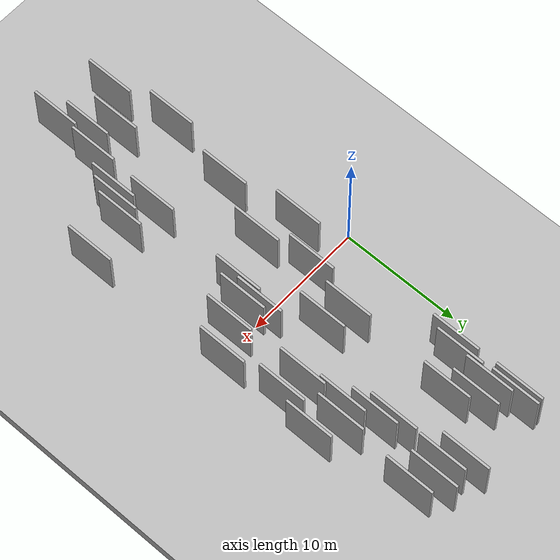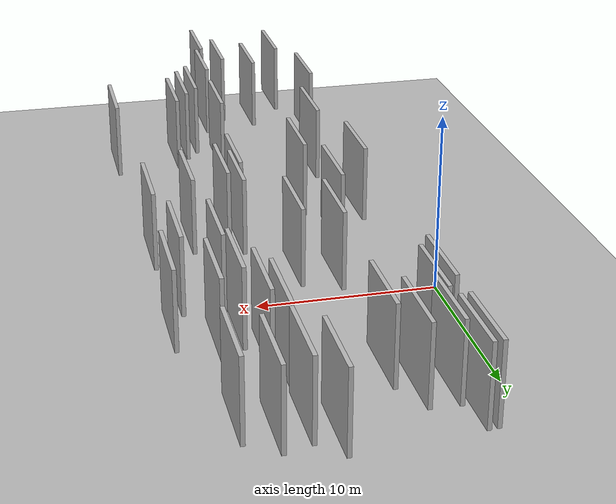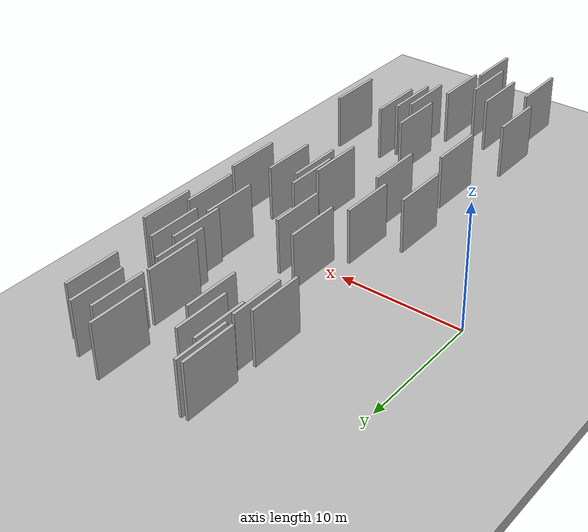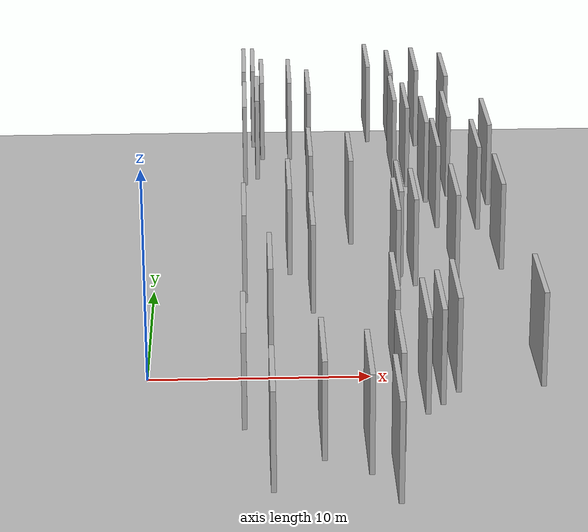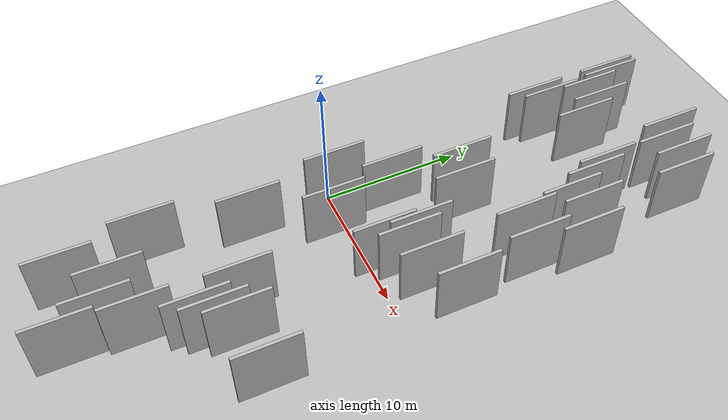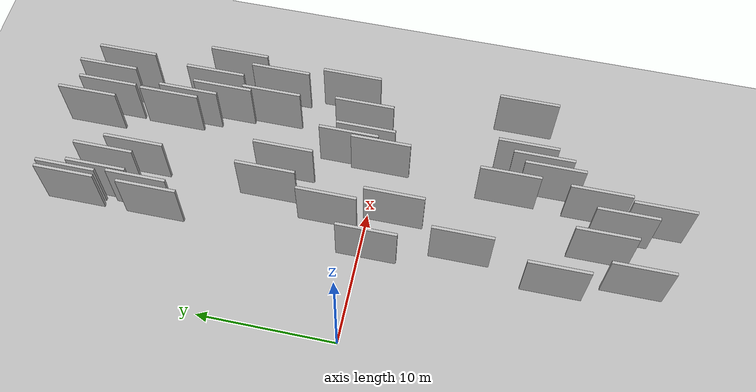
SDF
<?xml version="1.0" encoding="utf-8"?>

<sdf version="1.6">

   <world name="default">

      <gui fullscreen="0">

         <camera name="user_camera">

            <pose>-15 0 4.57585 0 0 0</pose>

            <view_controller>orbit</view_controller>

         </camera>

      </gui>

      <scene>

         <sky>

           <clouds>

             <speed>12</speed>

           </clouds>

         </sky>

         <ambient>0.4 0.4 0.4 1</ambient>

         <background>0.7 0.7 0.7 1</background>

         <shadows>1</shadows>

      </scene>

      <gravity>0 0 -9.8066</gravity>

      <magnetic_field>6e-06 2.3e-05 -4.2e-05</magnetic_field>

      <physics default="0" name="default_physics" type="ode">

         <ode>

            <solver>

               <type>quick</type>

               <iters>10</iters>

               <sor>1.0</sor>

               <use_dynamic_moi_rescaling>0</use_dynamic_moi_rescaling>

            </solver>

            <constraints>

               <cfm>0</cfm>

               <erp>0.2</erp>

               <contact_max_correcting_vel>100</contact_max_correcting_vel>

               <contact_surface_layer>0.001</contact_surface_layer>

            </constraints>

         </ode>

         <max_step_size>0.004</max_step_size>

         <real_time_factor>1</real_time_factor>

         <real_time_update_rate>250</real_time_update_rate>

      </physics>

      <light name="sun" type="directional">

         <cast_shadows>1</cast_shadows>

         <pose>0 0 10 0 0 0</pose>

         <diffuse>0.8 0.8 0.8 1</diffuse>

         <specular>0.2 0.2 0.2 1</specular>

         <attenuation>

            <range>1000</range>

            <constant>0.9</constant>

            <linear>0.01</linear>

            <quadratic>0.001</quadratic>

         </attenuation>

         <direction>-0.5 0.1 -0.9</direction>

      </light>

      <include>

         <name>ground_plane_1</name>

         <uri>model://HANNAS_ground_plane</uri>

         <pose>0 0 0  0 0 0</pose>

      </include>

      <include>

         <name>ground_plane_2</name>

         <uri>model://HANNAS_ground_plane</uri>

         <pose>100 0 0  0 0 0</pose>

      </include>

      <model name="HANNAS_wall_1">

         <static>1</static>

         <pose frame="">10.2005 -15.1687 5.0 0.000000 0.000000 1.570796</pose>

         <link name="link">

            <pose frame="">0 0 2.00 0 0 0</pose>

            <collision name="collision">

               <geometry>

                  <box>

                     <size>4.00 0.2 4.00</size>

                  </box>

               </geometry>

               <max_contacts>10</max_contacts>

               <surface>

                  <contact>

                     <ode/>

                  </contact>

                  <bounce/>

                  <friction>

                     <torsional>

                        <ode/>

                     </torsional>

                     <ode/>

                  </friction>

               </surface>

            </collision>

            <visual name="visual">

               <cast_shadows>0</cast_shadows>

               <geometry>

                  <box>

                     <size>4.00 0.2 4.00</size>

                  </box>

               </geometry>

               <material>

                  <script>

                     <uri>model://HANNAS_wall/materials/scripts</uri>

                     <uri>model://HANNAS_wall/materials/textures</uri>

                     <name>vrc/HANNAS_wall</name>

                  </script>

               </material>

            </visual>

            <self_collide>0</self_collide>

            <enable_wind>0</enable_wind>

            <kinematic>0</kinematic>

         </link>

      </model>

      <model name="HANNAS_wall_2">

         <static>1</static>

         <pose frame="">6.7532 16.9944 5.0 0.000000 0.000000 1.570796</pose>

         <link name="link">

            <pose frame="">0 0 2.00 0 0 0</pose>

            <collision name="collision">

               <geometry>

                  <box>

                     <size>4.00 0.2 4.00</size>

                  </box>

               </geometry>

               <max_contacts>10</max_contacts>

               <surface>

                  <contact>

                     <ode/>

                  </contact>

                  <bounce/>

                  <friction>

                     <torsional>

                        <ode/>

                     </torsional>

                     <ode/>

                  </friction>

               </surface>

            </collision>

            <visual name="visual">

               <cast_shadows>0</cast_shadows>

               <geometry>

                  <box>

                     <size>4.00 0.2 4.00</size>

                  </box>

               </geometry>

               <material>

                  <script>

                     <uri>model://HANNAS_wall/materials/scripts</uri>

                     <uri>model://HANNAS_wall/materials/textures</uri>

                     <name>vrc/HANNAS_wall</name>

                  </script>

               </material>

            </visual>

            <self_collide>0</self_collide>

            <enable_wind>0</enable_wind>

            <kinematic>0</kinematic>

         </link>

      </model>

      <model name="HANNAS_wall_3">

         <static>1</static>

         <pose frame="">11.2516 1.5689 5.0 0.000000 0.000000 1.570796</pose>

         <link name="link">

            <pose frame="">0 0 2.00 0 0 0</pose>

            <collision name="collision">

               <geometry>

                  <box>

                     <size>4.00 0.2 4.00</size>

                  </box>

               </geometry>

               <max_contacts>10</max_contacts>

               <surface>

                  <contact>

                     <ode/>

                  </contact>

                  <bounce/>

                  <friction>

                     <torsional>

                        <ode/>

                     </torsional>

                     <ode/>

                  </friction>

               </surface>

            </collision>

            <visual name="visual">

               <cast_shadows>0</cast_shadows>

               <geometry>

                  <box>

                     <size>4.00 0.2 4.00</size>

                  </box>

               </geometry>

               <material>

                  <script>

                     <uri>model://HANNAS_wall/materials/scripts</uri>

                     <uri>model://HANNAS_wall/materials/textures</uri>

                     <name>vrc/HANNAS_wall</name>

                  </script>

               </material>

            </visual>

            <self_collide>0</self_collide>

            <enable_wind>0</enable_wind>

            <kinematic>0</kinematic>

         </link>

      </model>

      <model name="HANNAS_wall_4">

         <static>1</static>

         <pose frame="">16.1217 -9.7748 5.0 0.000000 0.000000 1.570796</pose>

         <link name="link">

            <pose frame="">0 0 2.00 0 0 0</pose>

            <collision name="collision">

               <geometry>

                  <box>

                     <size>4.00 0.2 4.00</size>

                  </box>

               </geometry>

               <max_contacts>10</max_contacts>

               <surface>

                  <contact>

                     <ode/>

                  </contact>

                  <bounce/>

                  <friction>

                     <torsional>

                        <ode/>

                     </torsional>

                     <ode/>

                  </friction>

               </surface>

            </collision>

            <visual name="visual">

               <cast_shadows>0</cast_shadows>

               <geometry>

                  <box>

                     <size>4.00 0.2 4.00</size>

                  </box>

               </geometry>

               <material>

                  <script>

                     <uri>model://HANNAS_wall/materials/scripts</uri>

                     <uri>model://HANNAS_wall/materials/textures</uri>

                     <name>vrc/HANNAS_wall</name>

                  </script>

               </material>

            </visual>

            <self_collide>0</self_collide>

            <enable_wind>0</enable_wind>

            <kinematic>0</kinematic>

         </link>

      </model>

      <model name="HANNAS_wall_5">

         <static>1</static>

         <pose frame="">15.7666 2.2846 5.0 0.000000 0.000000 1.570796</pose>

         <link name="link">

            <pose frame="">0 0 2.00 0 0 0</pose>

            <collision name="collision">

               <geometry>

                  <box>

                     <size>4.00 0.2 4.00</size>

                  </box>

               </geometry>

               <max_contacts>10</max_contacts>

               <surface>

                  <contact>

                     <ode/>

                  </contact>

                  <bounce/>

                  <friction>

                     <torsional>

                        <ode/>

                     </torsional>

                     <ode/>

                  </friction>

               </surface>

            </collision>

            <visual name="visual">

               <cast_shadows>0</cast_shadows>

               <geometry>

                  <box>

                     <size>4.00 0.2 4.00</size>

                  </box>

               </geometry>

               <material>

                  <script>

                     <uri>model://HANNAS_wall/materials/scripts</uri>

                     <uri>model://HANNAS_wall/materials/textures</uri>

                     <name>vrc/HANNAS_wall</name>

                  </script>

               </material>

            </visual>

            <self_collide>0</self_collide>

            <enable_wind>0</enable_wind>

            <kinematic>0</kinematic>

         </link>

      </model>

      <model name="HANNAS_wall_6">

         <static>1</static>

         <pose frame="">13.3416 7.3728 5.0 0.000000 0.000000 1.570796</pose>

         <link name="link">

            <pose frame="">0 0 2.00 0 0 0</pose>

            <collision name="collision">

               <geometry>

                  <box>

                     <size>4.00 0.2 4.00</size>

                  </box>

               </geometry>

               <max_contacts>10</max_contacts>

               <surface>

                  <contact>

                     <ode/>

                  </contact>

                  <bounce/>

                  <friction>

                     <torsional>

                        <ode/>

                     </torsional>

                     <ode/>

                  </friction>

               </surface>

            </collision>

            <visual name="visual">

               <cast_shadows>0</cast_shadows>

               <geometry>

                  <box>

                     <size>4.00 0.2 4.00</size>

                  </box>

               </geometry>

               <material>

                  <script>

                     <uri>model://HANNAS_wall/materials/scripts</uri>

                     <uri>model://HANNAS_wall/materials/textures</uri>

                     <name>vrc/HANNAS_wall</name>

                  </script>

               </material>

            </visual>

            <self_collide>0</self_collide>

            <enable_wind>0</enable_wind>

            <kinematic>0</kinematic>

         </link>

      </model>

      <model name="HANNAS_wall_7">

         <static>1</static>

         <pose frame="">4.9559 18.9395 5.0 0.000000 0.000000 1.570796</pose>

         <link name="link">

            <pose frame="">0 0 2.00 0 0 0</pose>

            <collision name="collision">

               <geometry>

                  <box>

                     <size>4.00 0.2 4.00</size>

                  </box>

               </geometry>

               <max_contacts>10</max_contacts>

               <surface>

                  <contact>

                     <ode/>

                  </contact>

                  <bounce/>

                  <friction>

                     <torsional>

                        <ode/>

                     </torsional>

                     <ode/>

                  </friction>

               </surface>

            </collision>

            <visual name="visual">

               <cast_shadows>0</cast_shadows>

               <geometry>

                  <box>

                     <size>4.00 0.2 4.00</size>

                  </box>

               </geometry>

               <material>

                  <script>

                     <uri>model://HANNAS_wall/materials/scripts</uri>

                     <uri>model://HANNAS_wall/materials/textures</uri>

                     <name>vrc/HANNAS_wall</name>

                  </script>

               </material>

            </visual>

            <self_collide>0</self_collide>

            <enable_wind>0</enable_wind>

            <kinematic>0</kinematic>

         </link>

      </model>

      <model name="HANNAS_wall_8">

         <static>1</static>

         <pose frame="">8.9436 -16.9515 5.0 0.000000 0.000000 1.570796</pose>

         <link name="link">

            <pose frame="">0 0 2.00 0 0 0</pose>

            <collision name="collision">

               <geometry>

                  <box>

                     <size>4.00 0.2 4.00</size>

                  </box>

               </geometry>

               <max_contacts>10</max_contacts>

               <surface>

                  <contact>

                     <ode/>

                  </contact>

                  <bounce/>

                  <friction>

                     <torsional>

                        <ode/>

                     </torsional>

                     <ode/>

                  </friction>

               </surface>

            </collision>

            <visual name="visual">

               <cast_shadows>0</cast_shadows>

               <geometry>

                  <box>

                     <size>4.00 0.2 4.00</size>

                  </box>

               </geometry>

               <material>

                  <script>

                     <uri>model://HANNAS_wall/materials/scripts</uri>

                     <uri>model://HANNAS_wall/materials/textures</uri>

                     <name>vrc/HANNAS_wall</name>

                  </script>

               </material>

            </visual>

            <self_collide>0</self_collide>

            <enable_wind>0</enable_wind>

            <kinematic>0</kinematic>

         </link>

      </model>

      <model name="HANNAS_wall_9">

         <static>1</static>

         <pose frame="">4.5110 18.8897 5.0 0.000000 0.000000 1.570796</pose>

         <link name="link">

            <pose frame="">0 0 2.00 0 0 0</pose>

            <collision name="collision">

               <geometry>

                  <box>

                     <size>4.00 0.2 4.00</size>

                  </box>

               </geometry>

               <max_contacts>10</max_contacts>

               <surface>

                  <contact>

                     <ode/>

                  </contact>

                  <bounce/>

                  <friction>

                     <torsional>

                        <ode/>

                     </torsional>

                     <ode/>

                  </friction>

               </surface>

            </collision>

            <visual name="visual">

               <cast_shadows>0</cast_shadows>

               <geometry>

                  <box>

                     <size>4.00 0.2 4.00</size>

                  </box>

               </geometry>

               <material>

                  <script>

                     <uri>model://HANNAS_wall/materials/scripts</uri>

                     <uri>model://HANNAS_wall/materials/textures</uri>

                     <name>vrc/HANNAS_wall</name>

                  </script>

               </material>

            </visual>

            <self_collide>0</self_collide>

            <enable_wind>0</enable_wind>

            <kinematic>0</kinematic>

         </link>

      </model>

      <model name="HANNAS_wall_10">

         <static>1</static>

         <pose frame="">10.9849 -0.6470 5.0 0.000000 0.000000 1.570796</pose>

         <link name="link">

            <pose frame="">0 0 2.00 0 0 0</pose>

            <collision name="collision">

               <geometry>

                  <box>

                     <size>4.00 0.2 4.00</size>

                  </box>

               </geometry>

               <max_contacts>10</max_contacts>

               <surface>

                  <contact>

                     <ode/>

                  </contact>

                  <bounce/>

                  <friction>

                     <torsional>

                        <ode/>

                     </torsional>

                     <ode/>

                  </friction>

               </surface>

            </collision>

            <visual name="visual">

               <cast_shadows>0</cast_shadows>

               <geometry>

                  <box>

                     <size>4.00 0.2 4.00</size>

                  </box>

               </geometry>

               <material>

                  <script>

                     <uri>model://HANNAS_wall/materials/scripts</uri>

                     <uri>model://HANNAS_wall/materials/textures</uri>

                     <name>vrc/HANNAS_wall</name>

                  </script>

               </material>

            </visual>

            <self_collide>0</self_collide>

            <enable_wind>0</enable_wind>

            <kinematic>0</kinematic>

         </link>

      </model>

      <model name="HANNAS_wall_11">

         <static>1</static>

         <pose frame="">12.0299 -11.2718 5.0 0.000000 0.000000 1.570796</pose>

         <link name="link">

            <pose frame="">0 0 2.00 0 0 0</pose>

            <collision name="collision">

               <geometry>

                  <box>

                     <size>4.00 0.2 4.00</size>

                  </box>

               </geometry>

               <max_contacts>10</max_contacts>

               <surface>

                  <contact>

                     <ode/>

                  </contact>

                  <bounce/>

                  <friction>

                     <torsional>

                        <ode/>

                     </torsional>

                     <ode/>

                  </friction>

               </surface>

            </collision>

            <visual name="visual">

               <cast_shadows>0</cast_shadows>

               <geometry>

                  <box>

                     <size>4.00 0.2 4.00</size>

                  </box>

               </geometry>

               <material>

                  <script>

                     <uri>model://HANNAS_wall/materials/scripts</uri>

                     <uri>model://HANNAS_wall/materials/textures</uri>

                     <name>vrc/HANNAS_wall</name>

                  </script>

               </material>

            </visual>

            <self_collide>0</self_collide>

            <enable_wind>0</enable_wind>

            <kinematic>0</kinematic>

         </link>

      </model>

      <model name="HANNAS_wall_12">

         <static>1</static>

         <pose frame="">12.7286 -10.1697 5.0 0.000000 0.000000 1.570796</pose>

         <link name="link">

            <pose frame="">0 0 2.00 0 0 0</pose>

            <collision name="collision">

               <geometry>

                  <box>

                     <size>4.00 0.2 4.00</size>

                  </box>

               </geometry>

               <max_contacts>10</max_contacts>

               <surface>

                  <contact>

                     <ode/>

                  </contact>

                  <bounce/>

                  <friction>

                     <torsional>

                        <ode/>

                     </torsional>

                     <ode/>

                  </friction>

               </surface>

            </collision>

            <visual name="visual">

               <cast_shadows>0</cast_shadows>

               <geometry>

                  <box>

                     <size>4.00 0.2 4.00</size>

                  </box>

               </geometry>

               <material>

                  <script>

                     <uri>model://HANNAS_wall/materials/scripts</uri>

                     <uri>model://HANNAS_wall/materials/textures</uri>

                     <name>vrc/HANNAS_wall</name>

                  </script>

               </material>

            </visual>

            <self_collide>0</self_collide>

            <enable_wind>0</enable_wind>

            <kinematic>0</kinematic>

         </link>

      </model>

      <model name="HANNAS_wall_13">

         <static>1</static>

         <pose frame="">11.8707 18.4055 5.0 0.000000 0.000000 1.570796</pose>

         <link name="link">

            <pose frame="">0 0 2.00 0 0 0</pose>

            <collision name="collision">

               <geometry>

                  <box>

                     <size>4.00 0.2 4.00</size>

                  </box>

               </geometry>

               <max_contacts>10</max_contacts>

               <surface>

                  <contact>

                     <ode/>

                  </contact>

                  <bounce/>

                  <friction>

                     <torsional>

                        <ode/>

                     </torsional>

                     <ode/>

                  </friction>

               </surface>

            </collision>

            <visual name="visual">

               <cast_shadows>0</cast_shadows>

               <geometry>

                  <box>

                     <size>4.00 0.2 4.00</size>

                  </box>

               </geometry>

               <material>

                  <script>

                     <uri>model://HANNAS_wall/materials/scripts</uri>

                     <uri>model://HANNAS_wall/materials/textures</uri>

                     <name>vrc/HANNAS_wall</name>

                  </script>

               </material>

            </visual>

            <self_collide>0</self_collide>

            <enable_wind>0</enable_wind>

            <kinematic>0</kinematic>

         </link>

      </model>

      <model name="HANNAS_wall_14">

         <static>1</static>

         <pose frame="">13.1699 18.7863 5.0 0.000000 0.000000 1.570796</pose>

         <link name="link">

            <pose frame="">0 0 2.00 0 0 0</pose>

            <collision name="collision">

               <geometry>

                  <box>

                     <size>4.00 0.2 4.00</size>

                  </box>

               </geometry>

               <max_contacts>10</max_contacts>

               <surface>

                  <contact>

                     <ode/>

                  </contact>

                  <bounce/>

                  <friction>

                     <torsional>

                        <ode/>

                     </torsional>

                     <ode/>

                  </friction>

               </surface>

            </collision>

            <visual name="visual">

               <cast_shadows>0</cast_shadows>

               <geometry>

                  <box>

                     <size>4.00 0.2 4.00</size>

                  </box>

               </geometry>

               <material>

                  <script>

                     <uri>model://HANNAS_wall/materials/scripts</uri>

                     <uri>model://HANNAS_wall/materials/textures</uri>

                     <name>vrc/HANNAS_wall</name>

                  </script>

               </material>

            </visual>

            <self_collide>0</self_collide>

            <enable_wind>0</enable_wind>

            <kinematic>0</kinematic>

         </link>

      </model>

      <model name="HANNAS_wall_15">

         <static>1</static>

         <pose frame="">13.6700 1.0038 5.0 0.000000 0.000000 1.570796</pose>

         <link name="link">

            <pose frame="">0 0 2.00 0 0 0</pose>

            <collision name="collision">

               <geometry>

                  <box>

                     <size>4.00 0.2 4.00</size>

                  </box>

               </geometry>

               <max_contacts>10</max_contacts>

               <surface>

                  <contact>

                     <ode/>

                  </contact>

                  <bounce/>

                  <friction>

                     <torsional>

                        <ode/>

                     </torsional>

                     <ode/>

                  </friction>

               </surface>

            </collision>

            <visual name="visual">

               <cast_shadows>0</cast_shadows>

               <geometry>

                  <box>

                     <size>4.00 0.2 4.00</size>

                  </box>

               </geometry>

               <material>

                  <script>

                     <uri>model://HANNAS_wall/materials/scripts</uri>

                     <uri>model://HANNAS_wall/materials/textures</uri>

                     <name>vrc/HANNAS_wall</name>

                  </script>

               </material>

            </visual>

            <self_collide>0</self_collide>

            <enable_wind>0</enable_wind>

            <kinematic>0</kinematic>

         </link>

      </model>

      <model name="HANNAS_wall_16">

         <static>1</static>

         <pose frame="">9.2551 5.5345 5.0 0.000000 0.000000 1.570796</pose>

         <link name="link">

            <pose frame="">0 0 2.00 0 0 0</pose>

            <collision name="collision">

               <geometry>

                  <box>

                     <size>4.00 0.2 4.00</size>

                  </box>

               </geometry>

               <max_contacts>10</max_contacts>

               <surface>

                  <contact>

                     <ode/>

                  </contact>

                  <bounce/>

                  <friction>

                     <torsional>

                        <ode/>

                     </torsional>

                     <ode/>

                  </friction>

               </surface>

            </collision>

            <visual name="visual">

               <cast_shadows>0</cast_shadows>

               <geometry>

                  <box>

                     <size>4.00 0.2 4.00</size>

                  </box>

               </geometry>

               <material>

                  <script>

                     <uri>model://HANNAS_wall/materials/scripts</uri>

                     <uri>model://HANNAS_wall/materials/textures</uri>

                     <name>vrc/HANNAS_wall</name>

                  </script>

               </material>

            </visual>

            <self_collide>0</self_collide>

            <enable_wind>0</enable_wind>

            <kinematic>0</kinematic>

         </link>

      </model>

      <model name="HANNAS_wall_17">

         <static>1</static>

         <pose frame="">7.2999 -2.2638 5.0 0.000000 0.000000 1.570796</pose>

         <link name="link">

            <pose frame="">0 0 2.00 0 0 0</pose>

            <collision name="collision">

               <geometry>

                  <box>

                     <size>4.00 0.2 4.00</size>

                  </box>

               </geometry>

               <max_contacts>10</max_contacts>

               <surface>

                  <contact>

                     <ode/>

                  </contact>

                  <bounce/>

                  <friction>

                     <torsional>

                        <ode/>

                     </torsional>

                     <ode/>

                  </friction>

               </surface>

            </collision>

            <visual name="visual">

               <cast_shadows>0</cast_shadows>

               <geometry>

                  <box>

                     <size>4.00 0.2 4.00</size>

                  </box>

               </geometry>

               <material>

                  <script>

                     <uri>model://HANNAS_wall/materials/scripts</uri>

                     <uri>model://HANNAS_wall/materials/textures</uri>

                     <name>vrc/HANNAS_wall</name>

                  </script>

               </material>

            </visual>

            <self_collide>0</self_collide>

            <enable_wind>0</enable_wind>

            <kinematic>0</kinematic>

         </link>

      </model>

      <model name="HANNAS_wall_18">

         <static>1</static>

         <pose frame="">12.3138 12.8911 5.0 0.000000 0.000000 1.570796</pose>

         <link name="link">

            <pose frame="">0 0 2.00 0 0 0</pose>

            <collision name="collision">

               <geometry>

                  <box>

                     <size>4.00 0.2 4.00</size>

                  </box>

               </geometry>

               <max_contacts>10</max_contacts>

               <surface>

                  <contact>

                     <ode/>

                  </contact>

                  <bounce/>

                  <friction>

                     <torsional>

                        <ode/>

                     </torsional>

                     <ode/>

                  </friction>

               </surface>

            </collision>

            <visual name="visual">

               <cast_shadows>0</cast_shadows>

               <geometry>

                  <box>

                     <size>4.00 0.2 4.00</size>

                  </box>

               </geometry>

               <material>

                  <script>

                     <uri>model://HANNAS_wall/materials/scripts</uri>

                     <uri>model://HANNAS_wall/materials/textures</uri>

                     <name>vrc/HANNAS_wall</name>

                  </script>

               </material>

            </visual>

            <self_collide>0</self_collide>

            <enable_wind>0</enable_wind>

            <kinematic>0</kinematic>

         </link>

      </model>

      <model name="HANNAS_wall_19">

         <static>1</static>

         <pose frame="">7.4663 6.2818 5.0 0.000000 0.000000 1.570796</pose>

         <link name="link">

            <pose frame="">0 0 2.00 0 0 0</pose>

            <collision name="collision">

               <geometry>

                  <box>

                     <size>4.00 0.2 4.00</size>

                  </box>

               </geometry>

               <max_contacts>10</max_contacts>

               <surface>

                  <contact>

                     <ode/>

                  </contact>

                  <bounce/>

                  <friction>

                     <torsional>

                        <ode/>

                     </torsional>

                     <ode/>

                  </friction>

               </surface>

            </collision>

            <visual name="visual">

               <cast_shadows>0</cast_shadows>

               <geometry>

                  <box>

                     <size>4.00 0.2 4.00</size>

                  </box>

               </geometry>

               <material>

                  <script>

                     <uri>model://HANNAS_wall/materials/scripts</uri>

                     <uri>model://HANNAS_wall/materials/textures</uri>

                     <name>vrc/HANNAS_wall</name>

                  </script>

               </material>

            </visual>

            <self_collide>0</self_collide>

            <enable_wind>0</enable_wind>

            <kinematic>0</kinematic>

         </link>

      </model>

      <model name="HANNAS_wall_20">

         <static>1</static>

         <pose frame="">7.2711 -15.7959 5.0 0.000000 0.000000 1.570796</pose>

         <link name="link">

            <pose frame="">0 0 2.00 0 0 0</pose>

            <collision name="collision">

               <geometry>

                  <box>

                     <size>4.00 0.2 4.00</size>

                  </box>

               </geometry>

               <max_contacts>10</max_contacts>

               <surface>

                  <contact>

                     <ode/>

                  </contact>

                  <bounce/>

                  <friction>

                     <torsional>

                        <ode/>

                     </torsional>

                     <ode/>

                  </friction>

               </surface>

            </collision>

            <visual name="visual">

               <cast_shadows>0</cast_shadows>

               <geometry>

                  <box>

                     <size>4.00 0.2 4.00</size>

                  </box>

               </geometry>

               <material>

                  <script>

                     <uri>model://HANNAS_wall/materials/scripts</uri>

                     <uri>model://HANNAS_wall/materials/textures</uri>

                     <name>vrc/HANNAS_wall</name>

                  </script>

               </material>

            </visual>

            <self_collide>0</self_collide>

            <enable_wind>0</enable_wind>

            <kinematic>0</kinematic>

         </link>

      </model>

      <model name="HANNAS_wall_21">

         <static>1</static>

         <pose frame="">15.1887 7.1580 5.0 0.000000 0.000000 1.570796</pose>

         <link name="link">

            <pose frame="">0 0 2.00 0 0 0</pose>

            <collision name="collision">

               <geometry>

                  <box>

                     <size>4.00 0.2 4.00</size>

                  </box>

               </geometry>

               <max_contacts>10</max_contacts>

               <surface>

                  <contact>

                     <ode/>

                  </contact>

                  <bounce/>

                  <friction>

                     <torsional>

                        <ode/>

                     </torsional>

                     <ode/>

                  </friction>

               </surface>

            </collision>

            <visual name="visual">

               <cast_shadows>0</cast_shadows>

               <geometry>

                  <box>

                     <size>4.00 0.2 4.00</size>

                  </box>

               </geometry>

               <material>

                  <script>

                     <uri>model://HANNAS_wall/materials/scripts</uri>

                     <uri>model://HANNAS_wall/materials/textures</uri>

                     <name>vrc/HANNAS_wall</name>

                  </script>

               </material>

            </visual>

            <self_collide>0</self_collide>

            <enable_wind>0</enable_wind>

            <kinematic>0</kinematic>

         </link>

      </model>

      <model name="HANNAS_wall_22">

         <static>1</static>

         <pose frame="">14.5763 17.8428 5.0 0.000000 0.000000 1.570796</pose>

         <link name="link">

            <pose frame="">0 0 2.00 0 0 0</pose>

            <collision name="collision">

               <geometry>

                  <box>

                     <size>4.00 0.2 4.00</size>

                  </box>

               </geometry>

               <max_contacts>10</max_contacts>

               <surface>

                  <contact>

                     <ode/>

                  </contact>

                  <bounce/>

                  <friction>

                     <torsional>

                        <ode/>

                     </torsional>

                     <ode/>

                  </friction>

               </surface>

            </collision>

            <visual name="visual">

               <cast_shadows>0</cast_shadows>

               <geometry>

                  <box>

                     <size>4.00 0.2 4.00</size>

                  </box>

               </geometry>

               <material>

                  <script>

                     <uri>model://HANNAS_wall/materials/scripts</uri>

                     <uri>model://HANNAS_wall/materials/textures</uri>

                     <name>vrc/HANNAS_wall</name>

                  </script>

               </material>

            </visual>

            <self_collide>0</self_collide>

            <enable_wind>0</enable_wind>

            <kinematic>0</kinematic>

         </link>

      </model>

      <model name="HANNAS_wall_23">

         <static>1</static>

         <pose frame="">11.8285 0.5361 5.0 0.000000 0.000000 1.570796</pose>

         <link name="link">

            <pose frame="">0 0 2.00 0 0 0</pose>

            <collision name="collision">

               <geometry>

                  <box>

                     <size>4.00 0.2 4.00</size>

                  </box>

               </geometry>

               <max_contacts>10</max_contacts>

               <surface>

                  <contact>

                     <ode/>

                  </contact>

                  <bounce/>

                  <friction>

                     <torsional>

                        <ode/>

                     </torsional>

                     <ode/>

                  </friction>

               </surface>

            </collision>

            <visual name="visual">

               <cast_shadows>0</cast_shadows>

               <geometry>

                  <box>

                     <size>4.00 0.2 4.00</size>

                  </box>

               </geometry>

               <material>

                  <script>

                     <uri>model://HANNAS_wall/materials/scripts</uri>

                     <uri>model://HANNAS_wall/materials/textures</uri>

                     <name>vrc/HANNAS_wall</name>

                  </script>

               </material>

            </visual>

            <self_collide>0</self_collide>

            <enable_wind>0</enable_wind>

            <kinematic>0</kinematic>

         </link>

      </model>

      <model name="HANNAS_wall_24">

         <static>1</static>

         <pose frame="">10.7839 19.4972 5.0 0.000000 0.000000 1.570796</pose>

         <link name="link">

            <pose frame="">0 0 2.00 0 0 0</pose>

            <collision name="collision">

               <geometry>

                  <box>

                     <size>4.00 0.2 4.00</size>

                  </box>

               </geometry>

               <max_contacts>10</max_contacts>

               <surface>

                  <contact>

                     <ode/>

                  </contact>

                  <bounce/>

                  <friction>

                     <torsional>

                        <ode/>

                     </torsional>

                     <ode/>

                  </friction>

               </surface>

            </collision>

            <visual name="visual">

               <cast_shadows>0</cast_shadows>

               <geometry>

                  <box>

                     <size>4.00 0.2 4.00</size>

                  </box>

               </geometry>

               <material>

                  <script>

                     <uri>model://HANNAS_wall/materials/scripts</uri>

                     <uri>model://HANNAS_wall/materials/textures</uri>

                     <name>vrc/HANNAS_wall</name>

                  </script>

               </material>

            </visual>

            <self_collide>0</self_collide>

            <enable_wind>0</enable_wind>

            <kinematic>0</kinematic>

         </link>

      </model>

      <model name="HANNAS_wall_25">

         <static>1</static>

         <pose frame="">11.7766 14.0807 5.0 0.000000 0.000000 1.570796</pose>

         <link name="link">

            <pose frame="">0 0 2.00 0 0 0</pose>

            <collision name="collision">

               <geometry>

                  <box>

                     <size>4.00 0.2 4.00</size>

                  </box>

               </geometry>

               <max_contacts>10</max_contacts>

               <surface>

                  <contact>

                     <ode/>

                  </contact>

                  <bounce/>

                  <friction>

                     <torsional>

                        <ode/>

                     </torsional>

                     <ode/>

                  </friction>

               </surface>

            </collision>

            <visual name="visual">

               <cast_shadows>0</cast_shadows>

               <geometry>

                  <box>

                     <size>4.00 0.2 4.00</size>

                  </box>

               </geometry>

               <material>

                  <script>

                     <uri>model://HANNAS_wall/materials/scripts</uri>

                     <uri>model://HANNAS_wall/materials/textures</uri>

                     <name>vrc/HANNAS_wall</name>

                  </script>

               </material>

            </visual>

            <self_collide>0</self_collide>

            <enable_wind>0</enable_wind>

            <kinematic>0</kinematic>

         </link>

      </model>

      <model name="HANNAS_wall_26">

         <static>1</static>

         <pose frame="">9.8635 -19.2016 5.0 0.000000 0.000000 1.570796</pose>

         <link name="link">

            <pose frame="">0 0 2.00 0 0 0</pose>

            <collision name="collision">

               <geometry>

                  <box>

                     <size>4.00 0.2 4.00</size>

                  </box>

               </geometry>

               <max_contacts>10</max_contacts>

               <surface>

                  <contact>

                     <ode/>

                  </contact>

                  <bounce/>

                  <friction>

                     <torsional>

                        <ode/>

                     </torsional>

                     <ode/>

                  </friction>

               </surface>

            </collision>

            <visual name="visual">

               <cast_shadows>0</cast_shadows>

               <geometry>

                  <box>

                     <size>4.00 0.2 4.00</size>

                  </box>

               </geometry>

               <material>

                  <script>

                     <uri>model://HANNAS_wall/materials/scripts</uri>

                     <uri>model://HANNAS_wall/materials/textures</uri>

                     <name>vrc/HANNAS_wall</name>

                  </script>

               </material>

            </visual>

            <self_collide>0</self_collide>

            <enable_wind>0</enable_wind>

            <kinematic>0</kinematic>

         </link>

      </model>

      <model name="HANNAS_wall_27">

         <static>1</static>

         <pose frame="">6.4136 2.0030 5.0 0.000000 0.000000 1.570796</pose>

         <link name="link">

            <pose frame="">0 0 2.00 0 0 0</pose>

            <collision name="collision">

               <geometry>

                  <box>

                     <size>4.00 0.2 4.00</size>

                  </box>

               </geometry>

               <max_contacts>10</max_contacts>

               <surface>

                  <contact>

                     <ode/>

                  </contact>

                  <bounce/>

                  <friction>

                     <torsional>

                        <ode/>

                     </torsional>

                     <ode/>

                  </friction>

               </surface>

            </collision>

            <visual name="visual">

               <cast_shadows>0</cast_shadows>

               <geometry>

                  <box>

                     <size>4.00 0.2 4.00</size>

                  </box>

               </geometry>

               <material>

                  <script>

                     <uri>model://HANNAS_wall/materials/scripts</uri>

                     <uri>model://HANNAS_wall/materials/textures</uri>

                     <name>vrc/HANNAS_wall</name>

                  </script>

               </material>

            </visual>

            <self_collide>0</self_collide>

            <enable_wind>0</enable_wind>

            <kinematic>0</kinematic>

         </link>

      </model>

      <model name="HANNAS_wall_28">

         <static>1</static>

         <pose frame="">4.4219 -1.0275 5.0 0.000000 0.000000 1.570796</pose>

         <link name="link">

            <pose frame="">0 0 2.00 0 0 0</pose>

            <collision name="collision">

               <geometry>

                  <box>

                     <size>4.00 0.2 4.00</size>

                  </box>

               </geometry>

               <max_contacts>10</max_contacts>

               <surface>

                  <contact>

                     <ode/>

                  </contact>

                  <bounce/>

                  <friction>

                     <torsional>

                        <ode/>

                     </torsional>

                     <ode/>

                  </friction>

               </surface>

            </collision>

            <visual name="visual">

               <cast_shadows>0</cast_shadows>

               <geometry>

                  <box>

                     <size>4.00 0.2 4.00</size>

                  </box>

               </geometry>

               <material>

                  <script>

                     <uri>model://HANNAS_wall/materials/scripts</uri>

                     <uri>model://HANNAS_wall/materials/textures</uri>

                     <name>vrc/HANNAS_wall</name>

                  </script>

               </material>

            </visual>

            <self_collide>0</self_collide>

            <enable_wind>0</enable_wind>

            <kinematic>0</kinematic>

         </link>

      </model>

      <model name="HANNAS_wall_29">

         <static>1</static>

         <pose frame="">5.4434 -6.9847 5.0 0.000000 0.000000 1.570796</pose>

         <link name="link">

            <pose frame="">0 0 2.00 0 0 0</pose>

            <collision name="collision">

               <geometry>

                  <box>

                     <size>4.00 0.2 4.00</size>

                  </box>

               </geometry>

               <max_contacts>10</max_contacts>

               <surface>

                  <contact>

                     <ode/>

                  </contact>

                  <bounce/>

                  <friction>

                     <torsional>

                        <ode/>

                     </torsional>

                     <ode/>

                  </friction>

               </surface>

            </collision>

            <visual name="visual">

               <cast_shadows>0</cast_shadows>

               <geometry>

                  <box>

                     <size>4.00 0.2 4.00</size>

                  </box>

               </geometry>

               <material>

                  <script>

                     <uri>model://HANNAS_wall/materials/scripts</uri>

                     <uri>model://HANNAS_wall/materials/textures</uri>

                     <name>vrc/HANNAS_wall</name>

                  </script>

               </material>

            </visual>

            <self_collide>0</self_collide>

            <enable_wind>0</enable_wind>

            <kinematic>0</kinematic>

         </link>

      </model>

      <model name="HANNAS_wall_30">

         <static>1</static>

         <pose frame="">13.0659 10.7047 5.0 0.000000 0.000000 1.570796</pose>

         <link name="link">

            <pose frame="">0 0 2.00 0 0 0</pose>

            <collision name="collision">

               <geometry>

                  <box>

                     <size>4.00 0.2 4.00</size>

                  </box>

               </geometry>

               <max_contacts>10</max_contacts>

               <surface>

                  <contact>

                     <ode/>

                  </contact>

                  <bounce/>

                  <friction>

                     <torsional>

                        <ode/>

                     </torsional>

                     <ode/>

                  </friction>

               </surface>

            </collision>

            <visual name="visual">

               <cast_shadows>0</cast_shadows>

               <geometry>

                  <box>

                     <size>4.00 0.2 4.00</size>

                  </box>

               </geometry>

               <material>

                  <script>

                     <uri>model://HANNAS_wall/materials/scripts</uri>

                     <uri>model://HANNAS_wall/materials/textures</uri>

                     <name>vrc/HANNAS_wall</name>

                  </script>

               </material>

            </visual>

            <self_collide>0</self_collide>

            <enable_wind>0</enable_wind>

            <kinematic>0</kinematic>

         </link>

      </model>

      <model name="HANNAS_wall_31">

         <static>1</static>

         <pose frame="">15.9806 10.2782 5.0 0.000000 0.000000 1.570796</pose>

         <link name="link">

            <pose frame="">0 0 2.00 0 0 0</pose>

            <collision name="collision">

               <geometry>

                  <box>

                     <size>4.00 0.2 4.00</size>

                  </box>

               </geometry>

               <max_contacts>10</max_contacts>

               <surface>

                  <contact>

                     <ode/>

                  </contact>

                  <bounce/>

                  <friction>

                     <torsional>

                        <ode/>

                     </torsional>

                     <ode/>

                  </friction>

               </surface>

            </collision>

            <visual name="visual">

               <cast_shadows>0</cast_shadows>

               <geometry>

                  <box>

                     <size>4.00 0.2 4.00</size>

                  </box>

               </geometry>

               <material>

                  <script>

                     <uri>model://HANNAS_wall/materials/scripts</uri>

                     <uri>model://HANNAS_wall/materials/textures</uri>

                     <name>vrc/HANNAS_wall</name>

                  </script>

               </material>

            </visual>

            <self_collide>0</self_collide>

            <enable_wind>0</enable_wind>

            <kinematic>0</kinematic>

         </link>

      </model>

      <model name="HANNAS_wall_32">

         <static>1</static>

         <pose frame="">7.6550 15.2224 5.0 0.000000 0.000000 1.570796</pose>

         <link name="link">

            <pose frame="">0 0 2.00 0 0 0</pose>

            <collision name="collision">

               <geometry>

                  <box>

                     <size>4.00 0.2 4.00</size>

                  </box>

               </geometry>

               <max_contacts>10</max_contacts>

               <surface>

                  <contact>

                     <ode/>

                  </contact>

                  <bounce/>

                  <friction>

                     <torsional>

                        <ode/>

                     </torsional>

                     <ode/>

                  </friction>

               </surface>

            </collision>

            <visual name="visual">

               <cast_shadows>0</cast_shadows>

               <geometry>

                  <box>

                     <size>4.00 0.2 4.00</size>

                  </box>

               </geometry>

               <material>

                  <script>

                     <uri>model://HANNAS_wall/materials/scripts</uri>

                     <uri>model://HANNAS_wall/materials/textures</uri>

                     <name>vrc/HANNAS_wall</name>

                  </script>

               </material>

            </visual>

            <self_collide>0</self_collide>

            <enable_wind>0</enable_wind>

            <kinematic>0</kinematic>

         </link>

      </model>

      <model name="HANNAS_wall_33">

         <static>1</static>

         <pose frame="">10.3585 -9.3064 5.0 0.000000 0.000000 1.570796</pose>

         <link name="link">

            <pose frame="">0 0 2.00 0 0 0</pose>

            <collision name="collision">

               <geometry>

                  <box>

                     <size>4.00 0.2 4.00</size>

                  </box>

               </geometry>

               <max_contacts>10</max_contacts>

               <surface>

                  <contact>

                     <ode/>

                  </contact>

                  <bounce/>

                  <friction>

                     <torsional>

                        <ode/>

                     </torsional>

                     <ode/>

                  </friction>

               </surface>

            </collision>

            <visual name="visual">

               <cast_shadows>0</cast_shadows>

               <geometry>

                  <box>

                     <size>4.00 0.2 4.00</size>

                  </box>

               </geometry>

               <material>

                  <script>

                     <uri>model://HANNAS_wall/materials/scripts</uri>

                     <uri>model://HANNAS_wall/materials/textures</uri>

                     <name>vrc/HANNAS_wall</name>

                  </script>

               </material>

            </visual>

            <self_collide>0</self_collide>

            <enable_wind>0</enable_wind>

            <kinematic>0</kinematic>

         </link>

      </model>

      <model name="HANNAS_wall_34">

         <static>1</static>

         <pose frame="">5.3550 -18.1996 5.0 0.000000 0.000000 1.570796</pose>

         <link name="link">

            <pose frame="">0 0 2.00 0 0 0</pose>

            <collision name="collision">

               <geometry>

                  <box>

                     <size>4.00 0.2 4.00</size>

                  </box>

               </geometry>

               <max_contacts>10</max_contacts>

               <surface>

                  <contact>

                     <ode/>

                  </contact>

                  <bounce/>

                  <friction>

                     <torsional>

                        <ode/>

                     </torsional>

                     <ode/>

                  </friction>

               </surface>

            </collision>

            <visual name="visual">

               <cast_shadows>0</cast_shadows>

               <geometry>

                  <box>

                     <size>4.00 0.2 4.00</size>

                  </box>

               </geometry>

               <material>

                  <script>

                     <uri>model://HANNAS_wall/materials/scripts</uri>

                     <uri>model://HANNAS_wall/materials/textures</uri>

                     <name>vrc/HANNAS_wall</name>

                  </script>

               </material>

            </visual>

            <self_collide>0</self_collide>

            <enable_wind>0</enable_wind>

            <kinematic>0</kinematic>

         </link>

      </model>

      <model name="HANNAS_wall_35">

         <static>1</static>

         <pose frame="">5.3908 17.0310 5.0 0.000000 0.000000 1.570796</pose>

         <link name="link">

            <pose frame="">0 0 2.00 0 0 0</pose>

            <collision name="collision">

               <geometry>

                  <box>

                     <size>4.00 0.2 4.00</size>

                  </box>

               </geometry>

               <max_contacts>10</max_contacts>

               <surface>

                  <contact>

                     <ode/>

                  </contact>

                  <bounce/>

                  <friction>

                     <torsional>

                        <ode/>

                     </torsional>

                     <ode/>

                  </friction>

               </surface>

            </collision>

            <visual name="visual">

               <cast_shadows>0</cast_shadows>

               <geometry>

                  <box>

                     <size>4.00 0.2 4.00</size>

                  </box>

               </geometry>

               <material>

                  <script>

                     <uri>model://HANNAS_wall/materials/scripts</uri>

                     <uri>model://HANNAS_wall/materials/textures</uri>

                     <name>vrc/HANNAS_wall</name>

                  </script>

               </material>

            </visual>

            <self_collide>0</self_collide>

            <enable_wind>0</enable_wind>

            <kinematic>0</kinematic>

         </link>

      </model>

      <model name="HANNAS_wall_36">

         <static>1</static>

         <pose frame="">4.5207 13.3660 5.0 0.000000 0.000000 1.570796</pose>

         <link name="link">

            <pose frame="">0 0 2.00 0 0 0</pose>

            <collision name="collision">

               <geometry>

                  <box>

                     <size>4.00 0.2 4.00</size>

                  </box>

               </geometry>

               <max_contacts>10</max_contacts>

               <surface>

                  <contact>

                     <ode/>

                  </contact>

                  <bounce/>

                  <friction>

                     <torsional>

                        <ode/>

                     </torsional>

                     <ode/>

                  </friction>

               </surface>

            </collision>

            <visual name="visual">

               <cast_shadows>0</cast_shadows>

               <geometry>

                  <box>

                     <size>4.00 0.2 4.00</size>

                  </box>

               </geometry>

               <material>

                  <script>

                     <uri>model://HANNAS_wall/materials/scripts</uri>

                     <uri>model://HANNAS_wall/materials/textures</uri>

                     <name>vrc/HANNAS_wall</name>

                  </script>

               </material>

            </visual>

            <self_collide>0</self_collide>

            <enable_wind>0</enable_wind>

            <kinematic>0</kinematic>

         </link>

      </model>

      <model name="HANNAS_wall_37">

         <static>1</static>

         <pose frame="">5.1254 14.2350 5.0 0.000000 0.000000 1.570796</pose>

         <link name="link">

            <pose frame="">0 0 2.00 0 0 0</pose>

            <collision name="collision">

               <geometry>

                  <box>

                     <size>4.00 0.2 4.00</size>

                  </box>

               </geometry>

               <max_contacts>10</max_contacts>

               <surface>

                  <contact>

                     <ode/>

                  </contact>

                  <bounce/>

                  <friction>

                     <torsional>

                        <ode/>

                     </torsional>

                     <ode/>

                  </friction>

               </surface>

            </collision>

            <visual name="visual">

               <cast_shadows>0</cast_shadows>

               <geometry>

                  <box>

                     <size>4.00 0.2 4.00</size>

                  </box>

               </geometry>

               <material>

                  <script>

                     <uri>model://HANNAS_wall/materials/scripts</uri>

                     <uri>model://HANNAS_wall/materials/textures</uri>

                     <name>vrc/HANNAS_wall</name>

                  </script>

               </material>

            </visual>

            <self_collide>0</self_collide>

            <enable_wind>0</enable_wind>

            <kinematic>0</kinematic>

         </link>

      </model>

      <model name="HANNAS_wall_38">

         <static>1</static>

         <pose frame="">11.3799 -12.0893 5.0 0.000000 0.000000 1.570796</pose>

         <link name="link">

            <pose frame="">0 0 2.00 0 0 0</pose>

            <collision name="collision">

               <geometry>

                  <box>

                     <size>4.00 0.2 4.00</size>

                  </box>

               </geometry>

               <max_contacts>10</max_contacts>

               <surface>

                  <contact>

                     <ode/>

                  </contact>

                  <bounce/>

                  <friction>

                     <torsional>

                        <ode/>

                     </torsional>

                     <ode/>

                  </friction>

               </surface>

            </collision>

            <visual name="visual">

               <cast_shadows>0</cast_shadows>

               <geometry>

                  <box>

                     <size>4.00 0.2 4.00</size>

                  </box>

               </geometry>

               <material>

                  <script>

                     <uri>model://HANNAS_wall/materials/scripts</uri>

                     <uri>model://HANNAS_wall/materials/textures</uri>

                     <name>vrc/HANNAS_wall</name>

                  </script>

               </material>

            </visual>

            <self_collide>0</self_collide>

            <enable_wind>0</enable_wind>

            <kinematic>0</kinematic>

         </link>

      </model>

      <model name="HANNAS_wall_39">

         <static>1</static>

         <pose frame="">14.1654 11.4954 5.0 0.000000 0.000000 1.570796</pose>

         <link name="link">

            <pose frame="">0 0 2.00 0 0 0</pose>

            <collision name="collision">

               <geometry>

                  <box>

                     <size>4.00 0.2 4.00</size>

                  </box>

               </geometry>

               <max_contacts>10</max_contacts>

               <surface>

                  <contact>

                     <ode/>

                  </contact>

                  <bounce/>

                  <friction>

                     <torsional>

                        <ode/>

                     </torsional>

                     <ode/>

                  </friction>

               </surface>

            </collision>

            <visual name="visual">

               <cast_shadows>0</cast_shadows>

               <geometry>

                  <box>

                     <size>4.00 0.2 4.00</size>

                  </box>

               </geometry>

               <material>

                  <script>

                     <uri>model://HANNAS_wall/materials/scripts</uri>

                     <uri>model://HANNAS_wall/materials/textures</uri>

                     <name>vrc/HANNAS_wall</name>

                  </script>

               </material>

            </visual>

            <self_collide>0</self_collide>

            <enable_wind>0</enable_wind>

            <kinematic>0</kinematic>

         </link>

      </model>

      <model name="HANNAS_wall_40">

         <static>1</static>

         <pose frame="">4.3382 -13.1421 5.0 0.000000 0.000000 1.570796</pose>

         <link name="link">

            <pose frame="">0 0 2.00 0 0 0</pose>

            <collision name="collision">

               <geometry>

                  <box>

                     <size>4.00 0.2 4.00</size>

                  </box>

               </geometry>

               <max_contacts>10</max_contacts>

               <surface>

                  <contact>

                     <ode/>

                  </contact>

                  <bounce/>

                  <friction>

                     <torsional>

                        <ode/>

                     </torsional>

                     <ode/>

                  </friction>

               </surface>

            </collision>

            <visual name="visual">

               <cast_shadows>0</cast_shadows>

               <geometry>

                  <box>

                     <size>4.00 0.2 4.00</size>

                  </box>

               </geometry>

               <material>

                  <script>

                     <uri>model://HANNAS_wall/materials/scripts</uri>

                     <uri>model://HANNAS_wall/materials/textures</uri>

                     <name>vrc/HANNAS_wall</name>

                  </script>

               </material>

            </visual>

            <self_collide>0</self_collide>

            <enable_wind>0</enable_wind>

            <kinematic>0</kinematic>

         </link>

      </model>

   </world>

</sdf>
